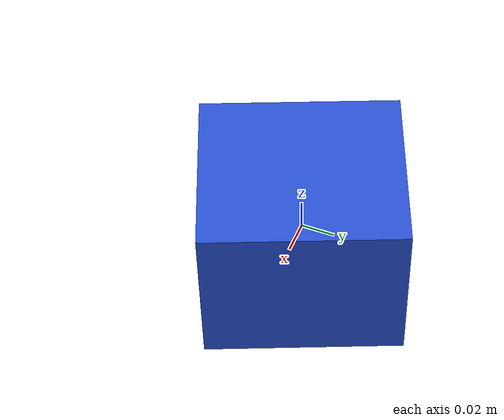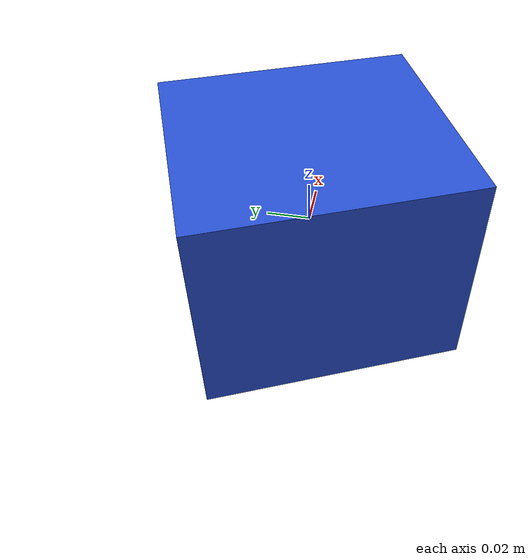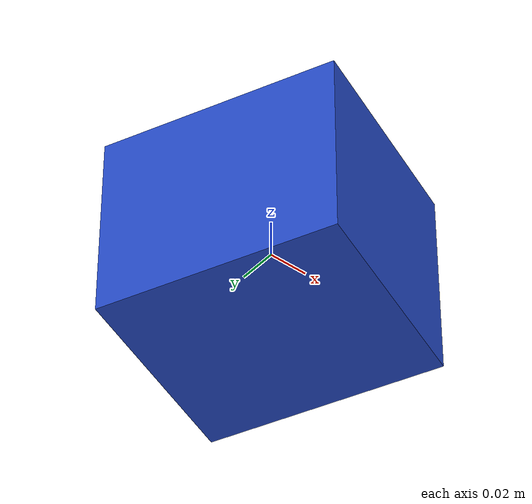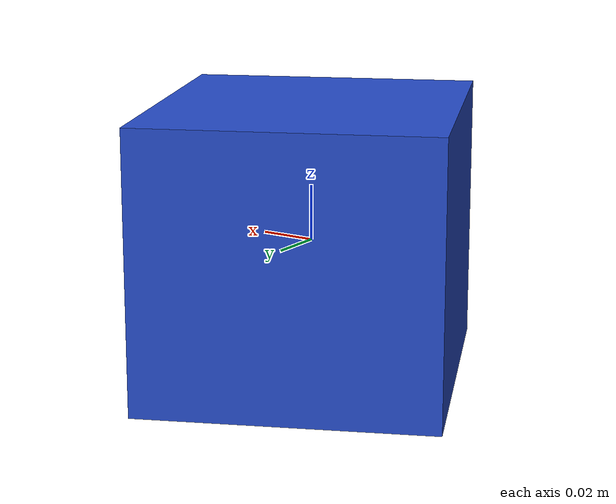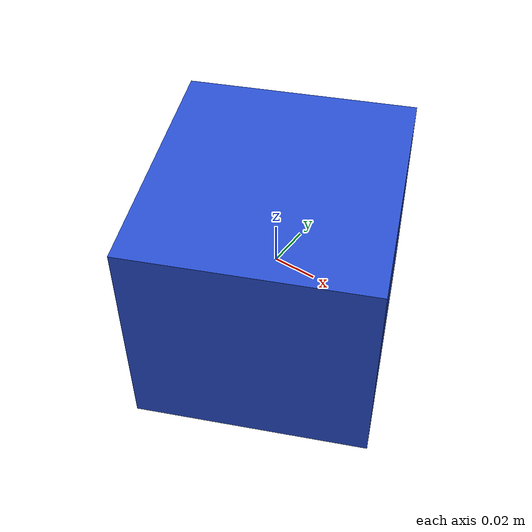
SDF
<sdf version="1.6"><model name="model_14"><static>true</static><link name="link"><pose>0 0 0 0 0 0.4014614562631852</pose><collision name="collision"><geometry><box><size>0.10657956257532925 0.11903483257097663 0.1</size></box></geometry></collision><visual name="visual"><geometry><box><size>0.10657956257532925 0.11903483257097663 0.1</size></box></geometry><material><script><name>Gazebo/Blue</name><uri>file://media/materials/scripts/gazebo.material</uri></script></material></visual></link></model></sdf>
